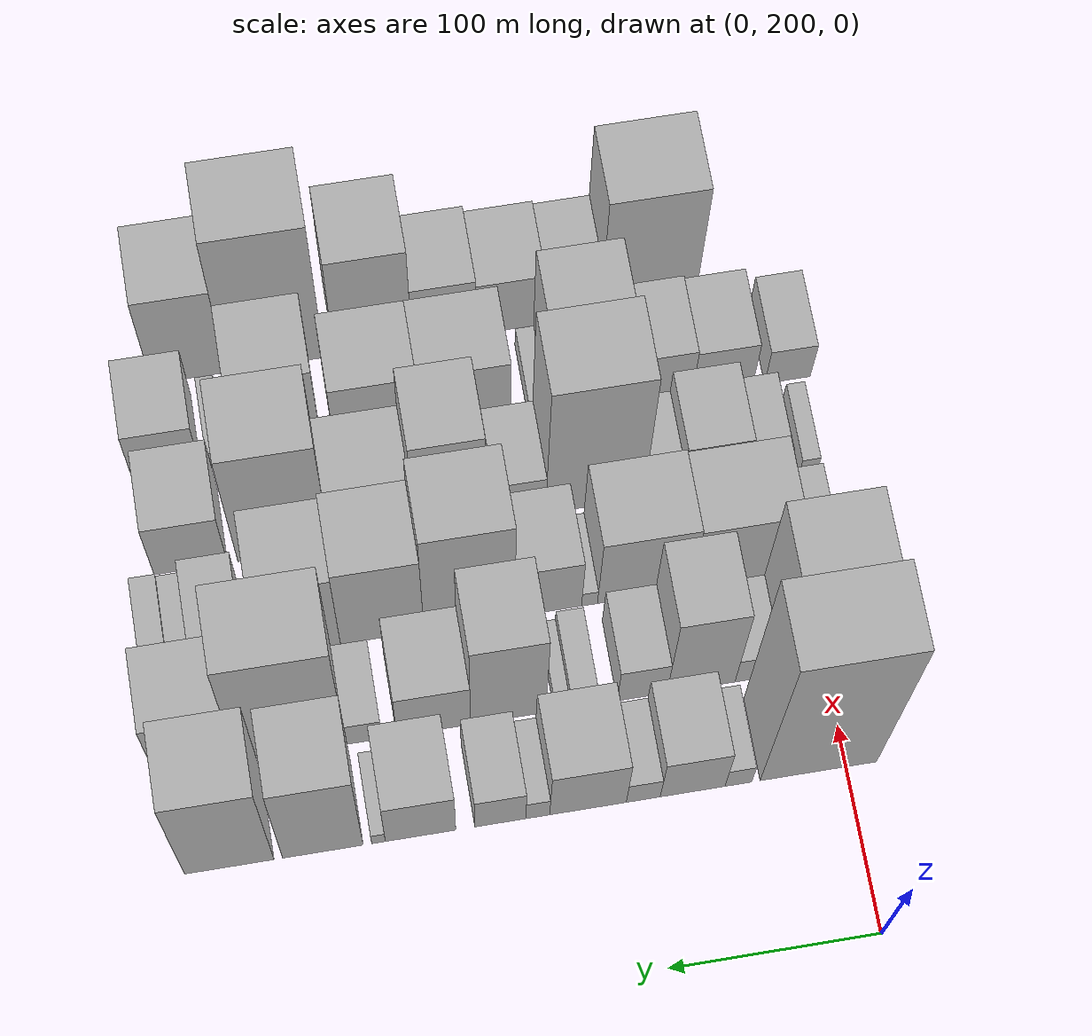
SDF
<sdf version="1.6">
 <world name="default">
  <model name="building_30">
   <static>1</static>
   <pose>100.0000 213.5052 0 0.000000 0.000000 0.000000</pose>
   <link name="link">
    <pose>0 0 91.50 0 0 0</pose>
    <collision name="collision"><geometry><box><size>40.0000 55.6866 183.0000</size></box></geometry></collision>
    <visual name="visual">
     <cast_shadows>0</cast_shadows>
     <geometry><box><size>40.0000 55.6866 183.0000</size></box></geometry>
     <material>
      <script>
       <uri>model://HANNAS_wall/materials/scripts</uri>
       <uri>model://HANNAS_wall/materials/textures</uri>
       <name>vrc/HANNAS_wall</name>
      </script>
     </material>
    </visual>
   </link>
  </model>
  <model name="building_31">
   <static>1</static>
   <pose>100.0000 251.6890 0 0.000000 0.000000 0.000000</pose>
   <link name="link">
    <pose>0 0 13.50 0 0 0</pose>
    <collision name="collision"><geometry><box><size>40.0000 12.6810 27.0000</size></box></geometry></collision>
    <visual name="visual">
     <cast_shadows>0</cast_shadows>
     <geometry><box><size>40.0000 12.6810 27.0000</size></box></geometry>
     <material>
      <script>
       <uri>model://HANNAS_wall/materials/scripts</uri>
       <uri>model://HANNAS_wall/materials/textures</uri>
       <name>vrc/HANNAS_wall</name>
      </script>
     </material>
    </visual>
   </link>
  </model>
  <model name="building_32">
   <static>1</static>
   <pose>100.0000 273.4831 0 0.000000 0.000000 0.000000</pose>
   <link name="link">
    <pose>0 0 28.50 0 0 0</pose>
    <collision name="collision"><geometry><box><size>40.0000 30.9074 57.0000</size></box></geometry></collision>
    <visual name="visual">
     <cast_shadows>0</cast_shadows>
     <geometry><box><size>40.0000 30.9074 57.0000</size></box></geometry>
     <material>
      <script>
       <uri>model://HANNAS_wall/materials/scripts</uri>
       <uri>model://HANNAS_wall/materials/textures</uri>
       <name>vrc/HANNAS_wall</name>
      </script>
     </material>
    </visual>
   </link>
  </model>
  <model name="building_33">
   <static>1</static>
   <pose>100.0000 296.9893 0 0.000000 0.000000 0.000000</pose>
   <link name="link">
    <pose>0 0 15.00 0 0 0</pose>
    <collision name="collision"><geometry><box><size>40.0000 16.1050 30.0000</size></box></geometry></collision>
    <visual name="visual">
     <cast_shadows>0</cast_shadows>
     <geometry><box><size>40.0000 16.1050 30.0000</size></box></geometry>
     <material>
      <script>
       <uri>model://HANNAS_wall/materials/scripts</uri>
       <uri>model://HANNAS_wall/materials/textures</uri>
       <name>vrc/HANNAS_wall</name>
      </script>
     </material>
    </visual>
   </link>
  </model>
  <model name="building_34">
   <static>1</static>
   <pose>100.0000 323.2109 0 0.000000 0.000000 0.000000</pose>
   <link name="link">
    <pose>0 0 33.00 0 0 0</pose>
    <collision name="collision"><geometry><box><size>40.0000 36.3383 66.0000</size></box></geometry></collision>
    <visual name="visual">
     <cast_shadows>0</cast_shadows>
     <geometry><box><size>40.0000 36.3383 66.0000</size></box></geometry>
     <material>
      <script>
       <uri>model://HANNAS_wall/materials/scripts</uri>
       <uri>model://HANNAS_wall/materials/textures</uri>
       <name>vrc/HANNAS_wall</name>
      </script>
     </material>
    </visual>
   </link>
  </model>
  <model name="building_35">
   <static>1</static>
   <pose>100.0000 347.0248 0 0.000000 0.000000 0.000000</pose>
   <link name="link">
    <pose>0 0 13.50 0 0 0</pose>
    <collision name="collision"><geometry><box><size>40.0000 11.2897 27.0000</size></box></geometry></collision>
    <visual name="visual">
     <cast_shadows>0</cast_shadows>
     <geometry><box><size>40.0000 11.2897 27.0000</size></box></geometry>
     <material>
      <script>
       <uri>model://HANNAS_wall/materials/scripts</uri>
       <uri>model://HANNAS_wall/materials/textures</uri>
       <name>vrc/HANNAS_wall</name>
      </script>
     </material>
    </visual>
   </link>
  </model>
  <model name="building_36">
   <static>1</static>
   <pose>100.0000 364.6943 0 0.000000 0.000000 0.000000</pose>
   <link name="link">
    <pose>0 0 22.50 0 0 0</pose>
    <collision name="collision"><geometry><box><size>40.0000 24.0492 45.0000</size></box></geometry></collision>
    <visual name="visual">
     <cast_shadows>0</cast_shadows>
     <geometry><box><size>40.0000 24.0492 45.0000</size></box></geometry>
     <material>
      <script>
       <uri>model://HANNAS_wall/materials/scripts</uri>
       <uri>model://HANNAS_wall/materials/textures</uri>
       <name>vrc/HANNAS_wall</name>
      </script>
     </material>
    </visual>
   </link>
  </model>
  <model name="building_37">
   <static>1</static>
   <pose>100.0000 402.3013 0 0.000000 0.000000 0.000000</pose>
   <link name="link">
    <pose>0 0 30.00 0 0 0</pose>
    <collision name="collision"><geometry><box><size>40.0000 33.1650 60.0000</size></box></geometry></collision>
    <visual name="visual">
     <cast_shadows>0</cast_shadows>
     <geometry><box><size>40.0000 33.1650 60.0000</size></box></geometry>
     <material>
      <script>
       <uri>model://HANNAS_wall/materials/scripts</uri>
       <uri>model://HANNAS_wall/materials/textures</uri>
       <name>vrc/HANNAS_wall</name>
      </script>
     </material>
    </visual>
   </link>
  </model>
  <model name="building_38">
   <static>1</static>
   <pose>100.0000 422.0885 0 0.000000 0.000000 0.000000</pose>
   <link name="link">
    <pose>0 0 7.50 0 0 0</pose>
    <collision name="collision"><geometry><box><size>40.0000 6.4094 15.0000</size></box></geometry></collision>
    <visual name="visual">
     <cast_shadows>0</cast_shadows>
     <geometry><box><size>40.0000 6.4094 15.0000</size></box></geometry>
     <material>
      <script>
       <uri>model://HANNAS_wall/materials/scripts</uri>
       <uri>model://HANNAS_wall/materials/textures</uri>
       <name>vrc/HANNAS_wall</name>
      </script>
     </material>
    </visual>
   </link>
  </model>
  <model name="building_39">
   <static>1</static>
   <pose>100.0000 448.2193 0 0.000000 0.000000 0.000000</pose>
   <link name="link">
    <pose>0 0 58.50 0 0 0</pose>
    <collision name="collision"><geometry><box><size>40.0000 37.8522 117.0000</size></box></geometry></collision>
    <visual name="visual">
     <cast_shadows>0</cast_shadows>
     <geometry><box><size>40.0000 37.8522 117.0000</size></box></geometry>
     <material>
      <script>
       <uri>model://HANNAS_wall/materials/scripts</uri>
       <uri>model://HANNAS_wall/materials/textures</uri>
       <name>vrc/HANNAS_wall</name>
      </script>
     </material>
    </visual>
   </link>
  </model>
  <model name="building_40">
   <static>1</static>
   <pose>100.0000 492.0342 0 0.000000 0.000000 0.000000</pose>
   <link name="link">
    <pose>0 0 61.50 0 0 0</pose>
    <collision name="collision"><geometry><box><size>40.0000 41.7775 123.0000</size></box></geometry></collision>
    <visual name="visual">
     <cast_shadows>0</cast_shadows>
     <geometry><box><size>40.0000 41.7775 123.0000</size></box></geometry>
     <material>
      <script>
       <uri>model://HANNAS_wall/materials/scripts</uri>
       <uri>model://HANNAS_wall/materials/textures</uri>
       <name>vrc/HANNAS_wall</name>
      </script>
     </material>
    </visual>
   </link>
  </model>
  <model name="building_74">
   <static>1</static>
   <pose>149.0000 202.5025 0 0.000000 0.000000 0.000000</pose>
   <link name="link">
    <pose>0 0 67.50 0 0 0</pose>
    <collision name="collision"><geometry><box><size>40.0000 44.2293 135.0000</size></box></geometry></collision>
    <visual name="visual">
     <cast_shadows>0</cast_shadows>
     <geometry><box><size>40.0000 44.2293 135.0000</size></box></geometry>
     <material>
      <script>
       <uri>model://HANNAS_wall/materials/scripts</uri>
       <uri>model://HANNAS_wall/materials/textures</uri>
       <name>vrc/HANNAS_wall</name>
      </script>
     </material>
    </visual>
   </link>
  </model>
  <model name="building_75">
   <static>1</static>
   <pose>149.0000 234.2312 0 0.000000 0.000000 0.000000</pose>
   <link name="link">
    <pose>0 0 16.50 0 0 0</pose>
    <collision name="collision"><geometry><box><size>40.0000 19.2281 33.0000</size></box></geometry></collision>
    <visual name="visual">
     <cast_shadows>0</cast_shadows>
     <geometry><box><size>40.0000 19.2281 33.0000</size></box></geometry>
     <material>
      <script>
       <uri>model://HANNAS_wall/materials/scripts</uri>
       <uri>model://HANNAS_wall/materials/textures</uri>
       <name>vrc/HANNAS_wall</name>
      </script>
     </material>
    </visual>
   </link>
  </model>
  <model name="building_76">
   <static>1</static>
   <pose>149.0000 260.2541 0 0.000000 0.000000 0.000000</pose>
   <link name="link">
    <pose>0 0 52.50 0 0 0</pose>
    <collision name="collision"><geometry><box><size>40.0000 32.8178 105.0000</size></box></geometry></collision>
    <visual name="visual">
     <cast_shadows>0</cast_shadows>
     <geometry><box><size>40.0000 32.8178 105.0000</size></box></geometry>
     <material>
      <script>
       <uri>model://HANNAS_wall/materials/scripts</uri>
       <uri>model://HANNAS_wall/materials/textures</uri>
       <name>vrc/HANNAS_wall</name>
      </script>
     </material>
    </visual>
   </link>
  </model>
  <model name="building_77">
   <static>1</static>
   <pose>149.0000 288.5850 0 0.000000 0.000000 0.000000</pose>
   <link name="link">
    <pose>0 0 22.50 0 0 0</pose>
    <collision name="collision"><geometry><box><size>40.0000 23.8441 45.0000</size></box></geometry></collision>
    <visual name="visual">
     <cast_shadows>0</cast_shadows>
     <geometry><box><size>40.0000 23.8441 45.0000</size></box></geometry>
     <material>
      <script>
       <uri>model://HANNAS_wall/materials/scripts</uri>
       <uri>model://HANNAS_wall/materials/textures</uri>
       <name>vrc/HANNAS_wall</name>
      </script>
     </material>
    </visual>
   </link>
  </model>
  <model name="building_78">
   <static>1</static>
   <pose>149.0000 317.0300 0 0.000000 0.000000 0.000000</pose>
   <link name="link">
    <pose>0 0 13.50 0 0 0</pose>
    <collision name="collision"><geometry><box><size>40.0000 13.0458 27.0000</size></box></geometry></collision>
    <visual name="visual">
     <cast_shadows>0</cast_shadows>
     <geometry><box><size>40.0000 13.0458 27.0000</size></box></geometry>
     <material>
      <script>
       <uri>model://HANNAS_wall/materials/scripts</uri>
       <uri>model://HANNAS_wall/materials/textures</uri>
       <name>vrc/HANNAS_wall</name>
      </script>
     </material>
    </visual>
   </link>
  </model>
  <model name="building_79">
   <static>1</static>
   <pose>149.0000 327.1718 0 0.000000 0.000000 0.000000</pose>
   <link name="link">
    <pose>0 0 7.50 0 0 0</pose>
    <collision name="collision"><geometry><box><size>40.0000 7.2379 15.0000</size></box></geometry></collision>
    <visual name="visual">
     <cast_shadows>0</cast_shadows>
     <geometry><box><size>40.0000 7.2379 15.0000</size></box></geometry>
     <material>
      <script>
       <uri>model://HANNAS_wall/materials/scripts</uri>
       <uri>model://HANNAS_wall/materials/textures</uri>
       <name>vrc/HANNAS_wall</name>
      </script>
     </material>
    </visual>
   </link>
  </model>
  <model name="building_80">
   <static>1</static>
   <pose>149.0000 352.7425 0 0.000000 0.000000 0.000000</pose>
   <link name="link">
    <pose>0 0 57.00 0 0 0</pose>
    <collision name="collision"><geometry><box><size>40.0000 35.9036 114.0000</size></box></geometry></collision>
    <visual name="visual">
     <cast_shadows>0</cast_shadows>
     <geometry><box><size>40.0000 35.9036 114.0000</size></box></geometry>
     <material>
      <script>
       <uri>model://HANNAS_wall/materials/scripts</uri>
       <uri>model://HANNAS_wall/materials/textures</uri>
       <name>vrc/HANNAS_wall</name>
      </script>
     </material>
    </visual>
   </link>
  </model>
  <model name="building_81">
   <static>1</static>
   <pose>149.0000 388.3239 0 0.000000 0.000000 0.000000</pose>
   <link name="link">
    <pose>0 0 30.00 0 0 0</pose>
    <collision name="collision"><geometry><box><size>40.0000 35.2592 60.0000</size></box></geometry></collision>
    <visual name="visual">
     <cast_shadows>0</cast_shadows>
     <geometry><box><size>40.0000 35.2592 60.0000</size></box></geometry>
     <material>
      <script>
       <uri>model://HANNAS_wall/materials/scripts</uri>
       <uri>model://HANNAS_wall/materials/textures</uri>
       <name>vrc/HANNAS_wall</name>
      </script>
     </material>
    </visual>
   </link>
  </model>
  <model name="building_82">
   <static>1</static>
   <pose>149.0000 421.5460 0 0.000000 0.000000 0.000000</pose>
   <link name="link">
    <pose>0 0 15.00 0 0 0</pose>
    <collision name="collision"><geometry><box><size>40.0000 17.1850 30.0000</size></box></geometry></collision>
    <visual name="visual">
     <cast_shadows>0</cast_shadows>
     <geometry><box><size>40.0000 17.1850 30.0000</size></box></geometry>
     <material>
      <script>
       <uri>model://HANNAS_wall/materials/scripts</uri>
       <uri>model://HANNAS_wall/materials/textures</uri>
       <name>vrc/HANNAS_wall</name>
      </script>
     </material>
    </visual>
   </link>
  </model>
  <model name="building_83">
   <static>1</static>
   <pose>149.0000 455.8976 0 0.000000 0.000000 0.000000</pose>
   <link name="link">
    <pose>0 0 73.50 0 0 0</pose>
    <collision name="collision"><geometry><box><size>40.0000 51.5183 147.0000</size></box></geometry></collision>
    <visual name="visual">
     <cast_shadows>0</cast_shadows>
     <geometry><box><size>40.0000 51.5183 147.0000</size></box></geometry>
     <material>
      <script>
       <uri>model://HANNAS_wall/materials/scripts</uri>
       <uri>model://HANNAS_wall/materials/textures</uri>
       <name>vrc/HANNAS_wall</name>
      </script>
     </material>
    </visual>
   </link>
  </model>
  <model name="building_84">
   <static>1</static>
   <pose>149.0000 501.0467 0 0.000000 0.000000 0.000000</pose>
   <link name="link">
    <pose>0 0 37.50 0 0 0</pose>
    <collision name="collision"><geometry><box><size>40.0000 38.7800 75.0000</size></box></geometry></collision>
    <visual name="visual">
     <cast_shadows>0</cast_shadows>
     <geometry><box><size>40.0000 38.7800 75.0000</size></box></geometry>
     <material>
      <script>
       <uri>model://HANNAS_wall/materials/scripts</uri>
       <uri>model://HANNAS_wall/materials/textures</uri>
       <name>vrc/HANNAS_wall</name>
      </script>
     </material>
    </visual>
   </link>
  </model>
  <model name="building_125">
   <static>1</static>
   <pose>198.0000 197.0400 0 0.000000 0.000000 0.000000</pose>
   <link name="link">
    <pose>0 0 18.00 0 0 0</pose>
    <collision name="collision"><geometry><box><size>40.0000 20.2697 36.0000</size></box></geometry></collision>
    <visual name="visual">
     <cast_shadows>0</cast_shadows>
     <geometry><box><size>40.0000 20.2697 36.0000</size></box></geometry>
     <material>
      <script>
       <uri>model://HANNAS_wall/materials/scripts</uri>
       <uri>model://HANNAS_wall/materials/textures</uri>
       <name>vrc/HANNAS_wall</name>
      </script>
     </material>
    </visual>
   </link>
  </model>
  <model name="building_126">
   <static>1</static>
   <pose>198.0000 231.3203 0 0.000000 0.000000 0.000000</pose>
   <link name="link">
    <pose>0 0 40.50 0 0 0</pose>
    <collision name="collision"><geometry><box><size>40.0000 48.2908 81.0000</size></box></geometry></collision>
    <visual name="visual">
     <cast_shadows>0</cast_shadows>
     <geometry><box><size>40.0000 48.2908 81.0000</size></box></geometry>
     <material>
      <script>
       <uri>model://HANNAS_wall/materials/scripts</uri>
       <uri>model://HANNAS_wall/materials/textures</uri>
       <name>vrc/HANNAS_wall</name>
      </script>
     </material>
    </visual>
   </link>
  </model>
  <model name="building_127">
   <static>1</static>
   <pose>198.0000 278.3875 0 0.000000 0.000000 0.000000</pose>
   <link name="link">
    <pose>0 0 42.00 0 0 0</pose>
    <collision name="collision"><geometry><box><size>40.0000 45.8436 84.0000</size></box></geometry></collision>
    <visual name="visual">
     <cast_shadows>0</cast_shadows>
     <geometry><box><size>40.0000 45.8436 84.0000</size></box></geometry>
     <material>
      <script>
       <uri>model://HANNAS_wall/materials/scripts</uri>
       <uri>model://HANNAS_wall/materials/textures</uri>
       <name>vrc/HANNAS_wall</name>
      </script>
     </material>
    </visual>
   </link>
  </model>
  <model name="building_128">
   <static>1</static>
   <pose>198.0000 305.1830 0 0.000000 0.000000 0.000000</pose>
   <link name="link">
    <pose>0 0 9.00 0 0 0</pose>
    <collision name="collision"><geometry><box><size>40.0000 7.7475 18.0000</size></box></geometry></collision>
    <visual name="visual">
     <cast_shadows>0</cast_shadows>
     <geometry><box><size>40.0000 7.7475 18.0000</size></box></geometry>
     <material>
      <script>
       <uri>model://HANNAS_wall/materials/scripts</uri>
       <uri>model://HANNAS_wall/materials/textures</uri>
       <name>vrc/HANNAS_wall</name>
      </script>
     </material>
    </visual>
   </link>
  </model>
  <model name="building_129">
   <static>1</static>
   <pose>198.0000 325.3304 0 0.000000 0.000000 0.000000</pose>
   <link name="link">
    <pose>0 0 31.50 0 0 0</pose>
    <collision name="collision"><geometry><box><size>40.0000 32.5473 63.0000</size></box></geometry></collision>
    <visual name="visual">
     <cast_shadows>0</cast_shadows>
     <geometry><box><size>40.0000 32.5473 63.0000</size></box></geometry>
     <material>
      <script>
       <uri>model://HANNAS_wall/materials/scripts</uri>
       <uri>model://HANNAS_wall/materials/textures</uri>
       <name>vrc/HANNAS_wall</name>
      </script>
     </material>
    </visual>
   </link>
  </model>
  <model name="building_130">
   <static>1</static>
   <pose>198.0000 363.3993 0 0.000000 0.000000 0.000000</pose>
   <link name="link">
    <pose>0 0 64.50 0 0 0</pose>
    <collision name="collision"><geometry><box><size>40.0000 43.5904 129.0000</size></box></geometry></collision>
    <visual name="visual">
     <cast_shadows>0</cast_shadows>
     <geometry><box><size>40.0000 43.5904 129.0000</size></box></geometry>
     <material>
      <script>
       <uri>model://HANNAS_wall/materials/scripts</uri>
       <uri>model://HANNAS_wall/materials/textures</uri>
       <name>vrc/HANNAS_wall</name>
      </script>
     </material>
    </visual>
   </link>
  </model>
  <model name="building_131">
   <static>1</static>
   <pose>198.0000 405.3227 0 0.000000 0.000000 0.000000</pose>
   <link name="link">
    <pose>0 0 51.00 0 0 0</pose>
    <collision name="collision"><geometry><box><size>40.0000 40.2565 102.0000</size></box></geometry></collision>
    <visual name="visual">
     <cast_shadows>0</cast_shadows>
     <geometry><box><size>40.0000 40.2565 102.0000</size></box></geometry>
     <material>
      <script>
       <uri>model://HANNAS_wall/materials/scripts</uri>
       <uri>model://HANNAS_wall/materials/textures</uri>
       <name>vrc/HANNAS_wall</name>
      </script>
     </material>
    </visual>
   </link>
  </model>
  <model name="building_132">
   <static>1</static>
   <pose>198.0000 444.2266 0 0.000000 0.000000 0.000000</pose>
   <link name="link">
    <pose>0 0 48.00 0 0 0</pose>
    <collision name="collision"><geometry><box><size>40.0000 37.5513 96.0000</size></box></geometry></collision>
    <visual name="visual">
     <cast_shadows>0</cast_shadows>
     <geometry><box><size>40.0000 37.5513 96.0000</size></box></geometry>
     <material>
      <script>
       <uri>model://HANNAS_wall/materials/scripts</uri>
       <uri>model://HANNAS_wall/materials/textures</uri>
       <name>vrc/HANNAS_wall</name>
      </script>
     </material>
    </visual>
   </link>
  </model>
  <model name="building_133">
   <static>1</static>
   <pose>198.0000 482.5629 0 0.000000 0.000000 0.000000</pose>
   <link name="link">
    <pose>0 0 21.00 0 0 0</pose>
    <collision name="collision"><geometry><box><size>40.0000 25.1211 42.0000</size></box></geometry></collision>
    <visual name="visual">
     <cast_shadows>0</cast_shadows>
     <geometry><box><size>40.0000 25.1211 42.0000</size></box></geometry>
     <material>
      <script>
       <uri>model://HANNAS_wall/materials/scripts</uri>
       <uri>model://HANNAS_wall/materials/textures</uri>
       <name>vrc/HANNAS_wall</name>
      </script>
     </material>
    </visual>
   </link>
  </model>
  <model name="building_134">
   <static>1</static>
   <pose>198.0000 500.7933 0 0.000000 0.000000 0.000000</pose>
   <link name="link">
    <pose>0 0 12.00 0 0 0</pose>
    <collision name="collision"><geometry><box><size>40.0000 11.3396 24.0000</size></box></geometry></collision>
    <visual name="visual">
     <cast_shadows>0</cast_shadows>
     <geometry><box><size>40.0000 11.3396 24.0000</size></box></geometry>
     <material>
      <script>
       <uri>model://HANNAS_wall/materials/scripts</uri>
       <uri>model://HANNAS_wall/materials/textures</uri>
       <name>vrc/HANNAS_wall</name>
      </script>
     </material>
    </visual>
   </link>
  </model>
  <model name="building_135">
   <static>1</static>
   <pose>198.0000 512.7919 0 0.000000 0.000000 0.000000</pose>
   <link name="link">
    <pose>0 0 13.50 0 0 0</pose>
    <collision name="collision"><geometry><box><size>40.0000 12.6577 27.0000</size></box></geometry></collision>
    <visual name="visual">
     <cast_shadows>0</cast_shadows>
     <geometry><box><size>40.0000 12.6577 27.0000</size></box></geometry>
     <material>
      <script>
       <uri>model://HANNAS_wall/materials/scripts</uri>
       <uri>model://HANNAS_wall/materials/textures</uri>
       <name>vrc/HANNAS_wall</name>
      </script>
     </material>
    </visual>
   </link>
  </model>
  <model name="building_176">
   <static>1</static>
   <pose>247.0000 188.5625 0 0.000000 0.000000 0.000000</pose>
   <link name="link">
    <pose>0 0 9.00 0 0 0</pose>
    <collision name="collision"><geometry><box><size>40.0000 8.9851 18.0000</size></box></geometry></collision>
    <visual name="visual">
     <cast_shadows>0</cast_shadows>
     <geometry><box><size>40.0000 8.9851 18.0000</size></box></geometry>
     <material>
      <script>
       <uri>model://HANNAS_wall/materials/scripts</uri>
       <uri>model://HANNAS_wall/materials/textures</uri>
       <name>vrc/HANNAS_wall</name>
      </script>
     </material>
    </visual>
   </link>
  </model>
  <model name="building_177">
   <static>1</static>
   <pose>247.0000 209.1656 0 0.000000 0.000000 0.000000</pose>
   <link name="link">
    <pose>0 0 18.00 0 0 0</pose>
    <collision name="collision"><geometry><box><size>40.0000 20.2211 36.0000</size></box></geometry></collision>
    <visual name="visual">
     <cast_shadows>0</cast_shadows>
     <geometry><box><size>40.0000 20.2211 36.0000</size></box></geometry>
     <material>
      <script>
       <uri>model://HANNAS_wall/materials/scripts</uri>
       <uri>model://HANNAS_wall/materials/textures</uri>
       <name>vrc/HANNAS_wall</name>
      </script>
     </material>
    </visual>
   </link>
  </model>
  <model name="building_178">
   <static>1</static>
   <pose>247.0000 235.2679 0 0.000000 0.000000 0.000000</pose>
   <link name="link">
    <pose>0 0 28.50 0 0 0</pose>
    <collision name="collision"><geometry><box><size>40.0000 31.9833 57.0000</size></box></geometry></collision>
    <visual name="visual">
     <cast_shadows>0</cast_shadows>
     <geometry><box><size>40.0000 31.9833 57.0000</size></box></geometry>
     <material>
      <script>
       <uri>model://HANNAS_wall/materials/scripts</uri>
       <uri>model://HANNAS_wall/materials/textures</uri>
       <name>vrc/HANNAS_wall</name>
      </script>
     </material>
    </visual>
   </link>
  </model>
  <model name="building_179">
   <static>1</static>
   <pose>247.0000 260.6213 0 0.000000 0.000000 0.000000</pose>
   <link name="link">
    <pose>0 0 16.50 0 0 0</pose>
    <collision name="collision"><geometry><box><size>40.0000 18.7235 33.0000</size></box></geometry></collision>
    <visual name="visual">
     <cast_shadows>0</cast_shadows>
     <geometry><box><size>40.0000 18.7235 33.0000</size></box></geometry>
     <material>
      <script>
       <uri>model://HANNAS_wall/materials/scripts</uri>
       <uri>model://HANNAS_wall/materials/textures</uri>
       <name>vrc/HANNAS_wall</name>
      </script>
     </material>
    </visual>
   </link>
  </model>
  <model name="building_180">
   <static>1</static>
   <pose>247.0000 294.0315 0 0.000000 0.000000 0.000000</pose>
   <link name="link">
    <pose>0 0 76.50 0 0 0</pose>
    <collision name="collision"><geometry><box><size>40.0000 48.0970 153.0000</size></box></geometry></collision>
    <visual name="visual">
     <cast_shadows>0</cast_shadows>
     <geometry><box><size>40.0000 48.0970 153.0000</size></box></geometry>
     <material>
      <script>
       <uri>model://HANNAS_wall/materials/scripts</uri>
       <uri>model://HANNAS_wall/materials/textures</uri>
       <name>vrc/HANNAS_wall</name>
      </script>
     </material>
    </visual>
   </link>
  </model>
  <model name="building_181">
   <static>1</static>
   <pose>247.0000 330.6400 0 0.000000 0.000000 0.000000</pose>
   <link name="link">
    <pose>0 0 24.00 0 0 0</pose>
    <collision name="collision"><geometry><box><size>40.0000 25.1199 48.0000</size></box></geometry></collision>
    <visual name="visual">
     <cast_shadows>0</cast_shadows>
     <geometry><box><size>40.0000 25.1199 48.0000</size></box></geometry>
     <material>
      <script>
       <uri>model://HANNAS_wall/materials/scripts</uri>
       <uri>model://HANNAS_wall/materials/textures</uri>
       <name>vrc/HANNAS_wall</name>
      </script>
     </material>
    </visual>
   </link>
  </model>
  <model name="building_182">
   <static>1</static>
   <pose>247.0000 364.8916 0 0.000000 0.000000 0.000000</pose>
   <link name="link">
    <pose>0 0 57.00 0 0 0</pose>
    <collision name="collision"><geometry><box><size>40.0000 35.3832 114.0000</size></box></geometry></collision>
    <visual name="visual">
     <cast_shadows>0</cast_shadows>
     <geometry><box><size>40.0000 35.3832 114.0000</size></box></geometry>
     <material>
      <script>
       <uri>model://HANNAS_wall/materials/scripts</uri>
       <uri>model://HANNAS_wall/materials/textures</uri>
       <name>vrc/HANNAS_wall</name>
      </script>
     </material>
    </visual>
   </link>
  </model>
  <model name="building_183">
   <static>1</static>
   <pose>247.0000 402.8613 0 0.000000 0.000000 0.000000</pose>
   <link name="link">
    <pose>0 0 34.50 0 0 0</pose>
    <collision name="collision"><geometry><box><size>40.0000 40.5562 69.0000</size></box></geometry></collision>
    <visual name="visual">
     <cast_shadows>0</cast_shadows>
     <geometry><box><size>40.0000 40.5562 69.0000</size></box></geometry>
     <material>
      <script>
       <uri>model://HANNAS_wall/materials/scripts</uri>
       <uri>model://HANNAS_wall/materials/textures</uri>
       <name>vrc/HANNAS_wall</name>
      </script>
     </material>
    </visual>
   </link>
  </model>
  <model name="building_184">
   <static>1</static>
   <pose>247.0000 445.5839 0 0.000000 0.000000 0.000000</pose>
   <link name="link">
    <pose>0 0 67.50 0 0 0</pose>
    <collision name="collision"><geometry><box><size>40.0000 44.8889 135.0000</size></box></geometry></collision>
    <visual name="visual">
     <cast_shadows>0</cast_shadows>
     <geometry><box><size>40.0000 44.8889 135.0000</size></box></geometry>
     <material>
      <script>
       <uri>model://HANNAS_wall/materials/scripts</uri>
       <uri>model://HANNAS_wall/materials/textures</uri>
       <name>vrc/HANNAS_wall</name>
      </script>
     </material>
    </visual>
   </link>
  </model>
  <model name="building_185">
   <static>1</static>
   <pose>247.0000 490.8082 0 0.000000 0.000000 0.000000</pose>
   <link name="link">
    <pose>0 0 31.50 0 0 0</pose>
    <collision name="collision"><geometry><box><size>40.0000 35.5597 63.0000</size></box></geometry></collision>
    <visual name="visual">
     <cast_shadows>0</cast_shadows>
     <geometry><box><size>40.0000 35.5597 63.0000</size></box></geometry>
     <material>
      <script>
       <uri>model://HANNAS_wall/materials/scripts</uri>
       <uri>model://HANNAS_wall/materials/textures</uri>
       <name>vrc/HANNAS_wall</name>
      </script>
     </material>
    </visual>
   </link>
  </model>
  <model name="building_226">
   <static>1</static>
   <pose>296.0000 189.1142 0 0.000000 0.000000 0.000000</pose>
   <link name="link">
    <pose>0 0 19.50 0 0 0</pose>
    <collision name="collision"><geometry><box><size>40.0000 22.8233 39.0000</size></box></geometry></collision>
    <visual name="visual">
     <cast_shadows>0</cast_shadows>
     <geometry><box><size>40.0000 22.8233 39.0000</size></box></geometry>
     <material>
      <script>
       <uri>model://HANNAS_wall/materials/scripts</uri>
       <uri>model://HANNAS_wall/materials/textures</uri>
       <name>vrc/HANNAS_wall</name>
      </script>
     </material>
    </visual>
   </link>
  </model>
  <model name="building_227">
   <static>1</static>
   <pose>296.0000 221.6152 0 0.000000 0.000000 0.000000</pose>
   <link name="link">
    <pose>0 0 25.50 0 0 0</pose>
    <collision name="collision"><geometry><box><size>40.0000 30.1789 51.0000</size></box></geometry></collision>
    <visual name="visual">
     <cast_shadows>0</cast_shadows>
     <geometry><box><size>40.0000 30.1789 51.0000</size></box></geometry>
     <material>
      <script>
       <uri>model://HANNAS_wall/materials/scripts</uri>
       <uri>model://HANNAS_wall/materials/textures</uri>
       <name>vrc/HANNAS_wall</name>
      </script>
     </material>
    </visual>
   </link>
  </model>
  <model name="building_228">
   <static>1</static>
   <pose>296.0000 250.3655 0 0.000000 0.000000 0.000000</pose>
   <link name="link">
    <pose>0 0 27.00 0 0 0</pose>
    <collision name="collision"><geometry><box><size>40.0000 27.3217 54.0000</size></box></geometry></collision>
    <visual name="visual">
     <cast_shadows>0</cast_shadows>
     <geometry><box><size>40.0000 27.3217 54.0000</size></box></geometry>
     <material>
      <script>
       <uri>model://HANNAS_wall/materials/scripts</uri>
       <uri>model://HANNAS_wall/materials/textures</uri>
       <name>vrc/HANNAS_wall</name>
      </script>
     </material>
    </visual>
   </link>
  </model>
  <model name="building_229">
   <static>1</static>
   <pose>296.0000 288.5278 0 0.000000 0.000000 0.000000</pose>
   <link name="link">
    <pose>0 0 54.00 0 0 0</pose>
    <collision name="collision"><geometry><box><size>40.0000 41.0028 108.0000</size></box></geometry></collision>
    <visual name="visual">
     <cast_shadows>0</cast_shadows>
     <geometry><box><size>40.0000 41.0028 108.0000</size></box></geometry>
     <material>
      <script>
       <uri>model://HANNAS_wall/materials/scripts</uri>
       <uri>model://HANNAS_wall/materials/textures</uri>
       <name>vrc/HANNAS_wall</name>
      </script>
     </material>
    </visual>
   </link>
  </model>
  <model name="building_230">
   <static>1</static>
   <pose>296.0000 313.5516 0 0.000000 0.000000 0.000000</pose>
   <link name="link">
    <pose>0 0 10.50 0 0 0</pose>
    <collision name="collision"><geometry><box><size>40.0000 9.0447 21.0000</size></box></geometry></collision>
    <visual name="visual">
     <cast_shadows>0</cast_shadows>
     <geometry><box><size>40.0000 9.0447 21.0000</size></box></geometry>
     <material>
      <script>
       <uri>model://HANNAS_wall/materials/scripts</uri>
       <uri>model://HANNAS_wall/materials/textures</uri>
       <name>vrc/HANNAS_wall</name>
      </script>
     </material>
    </visual>
   </link>
  </model>
  <model name="building_231">
   <static>1</static>
   <pose>296.0000 349.3499 0 0.000000 0.000000 0.000000</pose>
   <link name="link">
    <pose>0 0 37.50 0 0 0</pose>
    <collision name="collision"><geometry><box><size>40.0000 44.5519 75.0000</size></box></geometry></collision>
    <visual name="visual">
     <cast_shadows>0</cast_shadows>
     <geometry><box><size>40.0000 44.5519 75.0000</size></box></geometry>
     <material>
      <script>
       <uri>model://HANNAS_wall/materials/scripts</uri>
       <uri>model://HANNAS_wall/materials/textures</uri>
       <name>vrc/HANNAS_wall</name>
      </script>
     </material>
    </visual>
   </link>
  </model>
  <model name="building_232">
   <static>1</static>
   <pose>296.0000 392.6275 0 0.000000 0.000000 0.000000</pose>
   <link name="link">
    <pose>0 0 37.50 0 0 0</pose>
    <collision name="collision"><geometry><box><size>40.0000 42.0033 75.0000</size></box></geometry></collision>
    <visual name="visual">
     <cast_shadows>0</cast_shadows>
     <geometry><box><size>40.0000 42.0033 75.0000</size></box></geometry>
     <material>
      <script>
       <uri>model://HANNAS_wall/materials/scripts</uri>
       <uri>model://HANNAS_wall/materials/textures</uri>
       <name>vrc/HANNAS_wall</name>
      </script>
     </material>
    </visual>
   </link>
  </model>
  <model name="building_233">
   <static>1</static>
   <pose>296.0000 439.6206 0 0.000000 0.000000 0.000000</pose>
   <link name="link">
    <pose>0 0 51.00 0 0 0</pose>
    <collision name="collision"><geometry><box><size>40.0000 39.9830 102.0000</size></box></geometry></collision>
    <visual name="visual">
     <cast_shadows>0</cast_shadows>
     <geometry><box><size>40.0000 39.9830 102.0000</size></box></geometry>
     <material>
      <script>
       <uri>model://HANNAS_wall/materials/scripts</uri>
       <uri>model://HANNAS_wall/materials/textures</uri>
       <name>vrc/HANNAS_wall</name>
      </script>
     </material>
    </visual>
   </link>
  </model>
  <model name="building_234">
   <static>1</static>
   <pose>296.0000 470.9556 0 0.000000 0.000000 0.000000</pose>
   <link name="link">
    <pose>0 0 10.50 0 0 0</pose>
    <collision name="collision"><geometry><box><size>40.0000 8.6869 21.0000</size></box></geometry></collision>
    <visual name="visual">
     <cast_shadows>0</cast_shadows>
     <geometry><box><size>40.0000 8.6869 21.0000</size></box></geometry>
     <material>
      <script>
       <uri>model://HANNAS_wall/materials/scripts</uri>
       <uri>model://HANNAS_wall/materials/textures</uri>
       <name>vrc/HANNAS_wall</name>
      </script>
     </material>
    </visual>
   </link>
  </model>
  <model name="building_235">
   <static>1</static>
   <pose>296.0000 495.9444 0 0.000000 0.000000 0.000000</pose>
   <link name="link">
    <pose>0 0 28.50 0 0 0</pose>
    <collision name="collision"><geometry><box><size>40.0000 33.2908 57.0000</size></box></geometry></collision>
    <visual name="visual">
     <cast_shadows>0</cast_shadows>
     <geometry><box><size>40.0000 33.2908 57.0000</size></box></geometry>
     <material>
      <script>
       <uri>model://HANNAS_wall/materials/scripts</uri>
       <uri>model://HANNAS_wall/materials/textures</uri>
       <name>vrc/HANNAS_wall</name>
      </script>
     </material>
    </visual>
   </link>
  </model>
  <model name="building_280">
   <static>1</static>
   <pose>345.0000 250.0094 0 0.000000 0.000000 0.000000</pose>
   <link name="link">
    <pose>0 0 63.00 0 0 0</pose>
    <collision name="collision"><geometry><box><size>40.0000 47.7822 126.0000</size></box></geometry></collision>
    <visual name="visual">
     <cast_shadows>0</cast_shadows>
     <geometry><box><size>40.0000 47.7822 126.0000</size></box></geometry>
     <material>
      <script>
       <uri>model://HANNAS_wall/materials/scripts</uri>
       <uri>model://HANNAS_wall/materials/textures</uri>
       <name>vrc/HANNAS_wall</name>
      </script>
     </material>
    </visual>
   </link>
  </model>
  <model name="building_281">
   <static>1</static>
   <pose>345.0000 287.8824 0 0.000000 0.000000 0.000000</pose>
   <link name="link">
    <pose>0 0 27.00 0 0 0</pose>
    <collision name="collision"><geometry><box><size>40.0000 27.9639 54.0000</size></box></geometry></collision>
    <visual name="visual">
     <cast_shadows>0</cast_shadows>
     <geometry><box><size>40.0000 27.9639 54.0000</size></box></geometry>
     <material>
      <script>
       <uri>model://HANNAS_wall/materials/scripts</uri>
       <uri>model://HANNAS_wall/materials/textures</uri>
       <name>vrc/HANNAS_wall</name>
      </script>
     </material>
    </visual>
   </link>
  </model>
  <model name="building_282">
   <static>1</static>
   <pose>345.0000 318.8302 0 0.000000 0.000000 0.000000</pose>
   <link name="link">
    <pose>0 0 28.50 0 0 0</pose>
    <collision name="collision"><geometry><box><size>40.0000 33.9316 57.0000</size></box></geometry></collision>
    <visual name="visual">
     <cast_shadows>0</cast_shadows>
     <geometry><box><size>40.0000 33.9316 57.0000</size></box></geometry>
     <material>
      <script>
       <uri>model://HANNAS_wall/materials/scripts</uri>
       <uri>model://HANNAS_wall/materials/textures</uri>
       <name>vrc/HANNAS_wall</name>
      </script>
     </material>
    </visual>
   </link>
  </model>
  <model name="building_283">
   <static>1</static>
   <pose>345.0000 351.8897 0 0.000000 0.000000 0.000000</pose>
   <link name="link">
    <pose>0 0 31.50 0 0 0</pose>
    <collision name="collision"><geometry><box><size>40.0000 32.1872 63.0000</size></box></geometry></collision>
    <visual name="visual">
     <cast_shadows>0</cast_shadows>
     <geometry><box><size>40.0000 32.1872 63.0000</size></box></geometry>
     <material>
      <script>
       <uri>model://HANNAS_wall/materials/scripts</uri>
       <uri>model://HANNAS_wall/materials/textures</uri>
       <name>vrc/HANNAS_wall</name>
      </script>
     </material>
    </visual>
   </link>
  </model>
  <model name="building_284">
   <static>1</static>
   <pose>345.0000 387.3879 0 0.000000 0.000000 0.000000</pose>
   <link name="link">
    <pose>0 0 54.00 0 0 0</pose>
    <collision name="collision"><geometry><box><size>40.0000 38.8093 108.0000</size></box></geometry></collision>
    <visual name="visual">
     <cast_shadows>0</cast_shadows>
     <geometry><box><size>40.0000 38.8093 108.0000</size></box></geometry>
     <material>
      <script>
       <uri>model://HANNAS_wall/materials/scripts</uri>
       <uri>model://HANNAS_wall/materials/textures</uri>
       <name>vrc/HANNAS_wall</name>
      </script>
     </material>
    </visual>
   </link>
  </model>
  <model name="building_285">
   <static>1</static>
   <pose>345.0000 436.0543 0 0.000000 0.000000 0.000000</pose>
   <link name="link">
    <pose>0 0 75.00 0 0 0</pose>
    <collision name="collision"><geometry><box><size>40.0000 48.5235 150.0000</size></box></geometry></collision>
    <visual name="visual">
     <cast_shadows>0</cast_shadows>
     <geometry><box><size>40.0000 48.5235 150.0000</size></box></geometry>
     <material>
      <script>
       <uri>model://HANNAS_wall/materials/scripts</uri>
       <uri>model://HANNAS_wall/materials/textures</uri>
       <name>vrc/HANNAS_wall</name>
      </script>
     </material>
    </visual>
   </link>
  </model>
  <model name="building_286">
   <static>1</static>
   <pose>345.0000 478.8372 0 0.000000 0.000000 0.000000</pose>
   <link name="link">
    <pose>0 0 48.00 0 0 0</pose>
    <collision name="collision"><geometry><box><size>40.0000 37.0424 96.0000</size></box></geometry></collision>
    <visual name="visual">
     <cast_shadows>0</cast_shadows>
     <geometry><box><size>40.0000 37.0424 96.0000</size></box></geometry>
     <material>
      <script>
       <uri>model://HANNAS_wall/materials/scripts</uri>
       <uri>model://HANNAS_wall/materials/textures</uri>
       <name>vrc/HANNAS_wall</name>
      </script>
     </material>
    </visual>
   </link>
  </model>
 </world>
</sdf>
